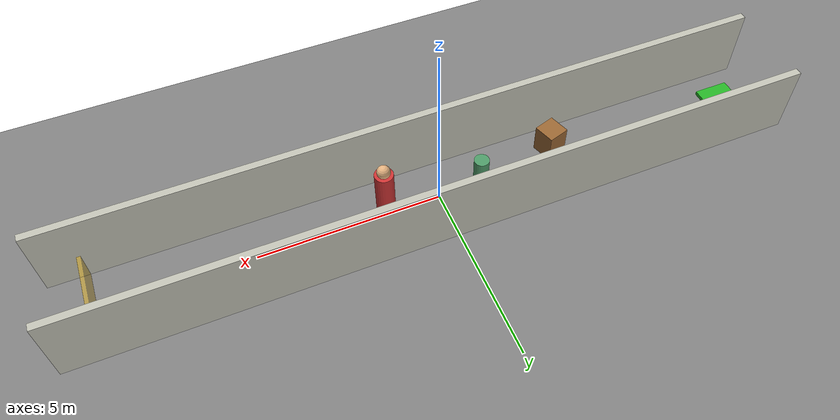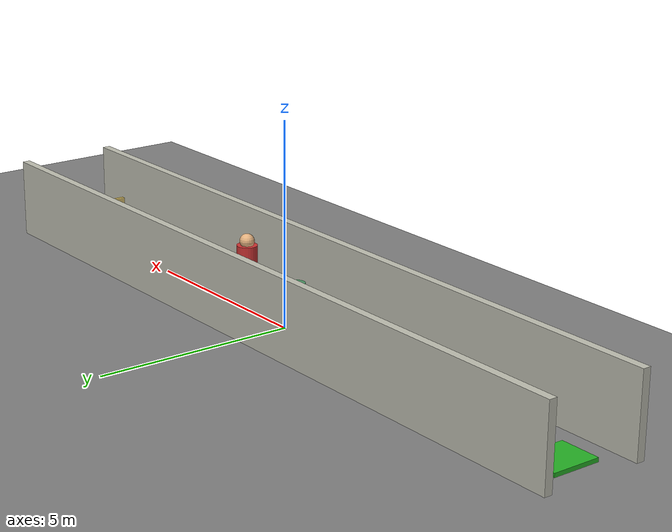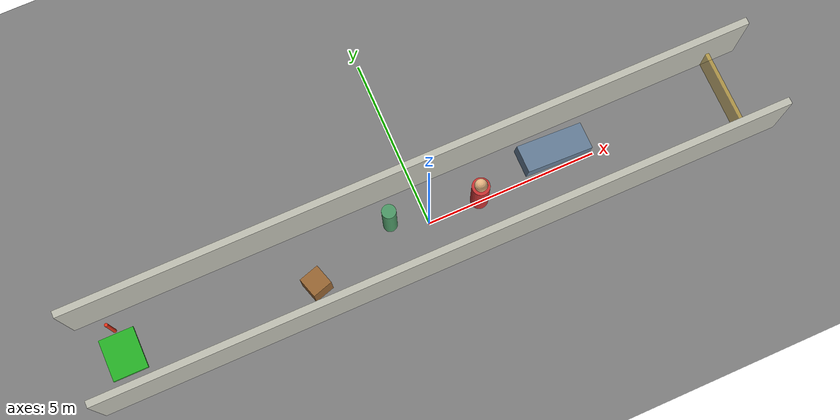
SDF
<?xml version='1.0'?>
<sdf version='1.8'>
  <world name='niihan_patrol_world'>

    <plugin
      filename="gz-sim-physics-system"
      name="gz::sim::systems::Physics">
    </plugin>
    <plugin
      filename="gz-sim-user-commands-system"
      name="gz::sim::systems::UserCommands">
    </plugin>
    <plugin
      filename="gz-sim-scene-broadcaster-system"
      name="gz::sim::systems::SceneBroadcaster">
    </plugin>
    <plugin
      filename="gz-sim-sensors-system"
      name="gz::sim::systems::Sensors">
      <render_engine>ogre2</render_engine>
    </plugin>
    <plugin
      filename="gz-sim-imu-system"
      name="gz::sim::systems::Imu">
    </plugin>
    <plugin
      filename="gz-sim-navsat-system"
      name="gz::sim::systems::NavSat">
    </plugin>
    <plugin
      filename="gz-sim-contact-system"
      name="gz::sim::systems::Contact">
    </plugin>

    <physics name='default_physics' type='ode'>
      <max_step_size>0.001</max_step_size>
      <real_time_factor>1.0</real_time_factor>
      <real_time_update_rate>1000</real_time_update_rate>
      <ode>
        <solver>
          <type>quick</type>
          <iters>50</iters>
        </solver>
      </ode>
    </physics>
    <gravity>0 0 -9.81</gravity>

    <scene>
      <ambient>0.15 0.10 0.10 1</ambient>
      <background>0.6 0.7 0.8 1</background>
      <shadows>true</shadows>
    </scene>

    <light type='directional' name='sun'>
      <cast_shadows>true</cast_shadows>
      <pose>0 0 15 0 0 0</pose>
      <diffuse>0.9 0.9 0.85 1</diffuse>
      <specular>0.2 0.2 0.2 1</specular>
      <direction>-0.4 0.2 -0.9</direction>
    </light>

    <model name='ground_plane'>
      <static>true</static>
      <link name='link'>
        <collision name='collision'>
          <geometry>
            <plane>
              <normal>0 0 1</normal>
              <size>60 20</size>
            </plane>
          </geometry>
          <surface>
            <friction>
              <ode>
                <mu>0.9</mu>
                <mu2>0.9</mu2>
              </ode>
            </friction>
          </surface>
        </collision>
        <visual name='visual'>
          <geometry>
            <plane>
              <normal>0 0 1</normal>
              <size>60 20</size>
            </plane>
          </geometry>
          <material>
            <ambient>0.15 0.10 0.10 1</ambient>
            <diffuse>0.5 0.5 0.5 1</diffuse>
          </material>
        </visual>
      </link>
    </model>

    <!-- Patrol corridor: two parallel walls, 2.5m apart, running 20m along X, centered at origin -->
    <model name='corridor_wall_north'>
      <static>true</static>
      <pose>0 1.25 1.0 0 0 0</pose>
      <link name='link'>
        <collision name='collision'>
          <geometry><box><size>20 0.2 2.0</size></box></geometry>
        </collision>
        <visual name='visual'>
          <geometry><box><size>20 0.2 2.0</size></box></geometry>
          <material>
            <ambient>0.7 0.7 0.65 1</ambient>
            <diffuse>0.75 0.75 0.7 1</diffuse>
          </material>
        </visual>
      </link>
    </model>

    <model name='corridor_wall_south'>
      <static>true</static>
      <pose>0 -1.25 1.0 0 0 0</pose>
      <link name='link'>
        <collision name='collision'>
          <geometry><box><size>20 0.2 2.0</size></box></geometry>
        </collision>
        <visual name='visual'>
          <geometry><box><size>20 0.2 2.0</size></box></geometry>
          <material>
            <ambient>0.7 0.7 0.65 1</ambient>
            <diffuse>0.75 0.75 0.7 1</diffuse>
          </material>
        </visual>
      </link>
    </model>

    <!-- Charging dock at the west end of the corridor (x = -9) -->
    <model name='charging_dock'>
      <static>true</static>
      <pose>-9 0 0.05 0 0 0</pose>
      <link name='link'>
        <collision name='collision'>
          <geometry><box><size>1.0 1.2 0.1</size></box></geometry>
        </collision>
        <visual name='visual'>
          <geometry><box><size>1.0 1.2 0.1</size></box></geometry>
          <material>
            <ambient>0.1 0.6 0.1 1</ambient>
            <diffuse>0.15 0.7 0.15 1</diffuse>
          </material>
        </visual>
      </link>
    </model>

    <model name='dock_marker_post'>
      <static>true</static>
      <pose>-9 0.7 0.5 0 0 0</pose>
      <link name='link'>
        <collision name='collision'>
          <geometry><cylinder><radius>0.05</radius><length>1.0</length></cylinder></geometry>
        </collision>
        <visual name='visual'>
          <geometry><cylinder><radius>0.05</radius><length>1.0</length></cylinder></geometry>
          <material>
            <ambient>0.9 0.2 0.1 1</ambient>
            <diffuse>0.9 0.2 0.1 1</diffuse>
          </material>
        </visual>
      </link>
    </model>

    <!-- Geofence boundary markers at east end of corridor (x = 9), used by GNSS/geofence scenarios -->
    <model name='geofence_marker_east'>
      <static>true</static>
      <pose>9 0 0.4 0 0 0</pose>
      <link name='link'>
        <visual name='visual'>
          <geometry><box><size>0.1 2.4 0.8</size></box></geometry>
          <material>
            <ambient>0.9 0.7 0.1 0.5</ambient>
            <diffuse>0.9 0.7 0.1 0.5</diffuse>
          </material>
        </visual>
      </link>
    </model>

    <!-- Dynamic Moving Pedestrian: walks back and forth across the corridor path -->
    <model name='pedestrian_obstacle'>
      <pose>1.5 0 0.85 0 0 0</pose>
      <link name='pedestrian_link'>
        <inertial>
          <mass>75.0</mass>
          <inertia>
            <ixx>10.0</ixx><ixy>0</ixy><ixz>0</ixz>
            <iyy>10.0</iyy><iyz>0</iyz>
            <izz>3.0</izz>
          </inertia>
        </inertial>
        <collision name='collision'>
          <geometry><cylinder><radius>0.28</radius><length>1.7</length></cylinder></geometry>
        </collision>
        <visual name='visual_torso'>
          <pose>0 0 0.1 0 0 0</pose>
          <geometry><cylinder><radius>0.25</radius><length>1.4</length></cylinder></geometry>
          <material>
            <ambient>0.8 0.2 0.2 1.0</ambient>
            <diffuse>0.8 0.2 0.2 1.0</diffuse>
          </material>
        </visual>
        <visual name='visual_head'>
          <pose>0 0 0.9 0 0 0</pose>
          <geometry><sphere><radius>0.18</radius></sphere></geometry>
          <material>
            <ambient>0.9 0.7 0.5 1.0</ambient>
            <diffuse>0.9 0.7 0.5 1.0</diffuse>
          </material>
        </visual>
      </link>
      <plugin
        filename="gz-sim-trajectory-follower-system"
        name="gz::sim::systems::TrajectoryFollower">
        <link_name>pedestrian_link</link_name>
        <loop>true</loop>
        <waypoints>
          <waypoint>
            <time>0.0</time>
            <pose>1.5 -0.85 0.85 0 0 1.57</pose>
          </waypoint>
          <waypoint>
            <time>4.0</time>
            <pose>1.5 0.85 0.85 0 0 1.57</pose>
          </waypoint>
          <waypoint>
            <time>5.0</time>
            <pose>1.5 0.85 0.85 0 0 -1.57</pose>
          </waypoint>
          <waypoint>
            <time>9.0</time>
            <pose>1.5 -0.85 0.85 0 0 -1.57</pose>
          </waypoint>
          <waypoint>
            <time>10.0</time>
            <pose>1.5 -0.85 0.85 0 0 1.57</pose>
          </waypoint>
        </waypoints>
      </plugin>
    </model>

    <!-- 3D Terrain & Obstacle Features: sloped ramp and terrain boxes for 3D mapping -->
    <model name='terrain_ramp'>
      <static>true</static>
      <pose>4.0 0.5 0.2 0 0.15 0</pose>
      <link name='link'>
        <collision name='collision'>
          <geometry><box><size>2.0 0.8 0.4</size></box></geometry>
        </collision>
        <visual name='visual'>
          <geometry><box><size>2.0 0.8 0.4</size></box></geometry>
          <material>
            <ambient>0.4 0.5 0.6 1</ambient>
            <diffuse>0.4 0.5 0.6 1</diffuse>
          </material>
        </visual>
      </link>
    </model>

    <model name='terrain_box_structure'>
      <static>true</static>
      <pose>-3.5 -0.4 0.4 0 0 0.3</pose>
      <link name='link'>
        <collision name='collision'>
          <geometry><box><size>0.6 0.6 0.8</size></box></geometry>
        </collision>
        <visual name='visual'>
          <geometry><box><size>0.6 0.6 0.8</size></box></geometry>
          <material>
            <ambient>0.6 0.4 0.2 1</ambient>
            <diffuse>0.6 0.4 0.2 1</diffuse>
          </material>
        </visual>
      </link>
    </model>

    <model name='terrain_pillar'>
      <static>true</static>
      <pose>-1.0 0.4 0.75 0 0 0</pose>
      <link name='link'>
        <collision name='collision'>
          <geometry><cylinder><radius>0.2</radius><length>1.5</length></cylinder></geometry>
        </collision>
        <visual name='visual'>
          <geometry><cylinder><radius>0.2</radius><length>1.5</length></cylinder></geometry>
          <material>
            <ambient>0.3 0.6 0.4 1</ambient>
            <diffuse>0.3 0.6 0.4 1</diffuse>
          </material>
        </visual>
      </link>
    </model>

  </world>
</sdf>
